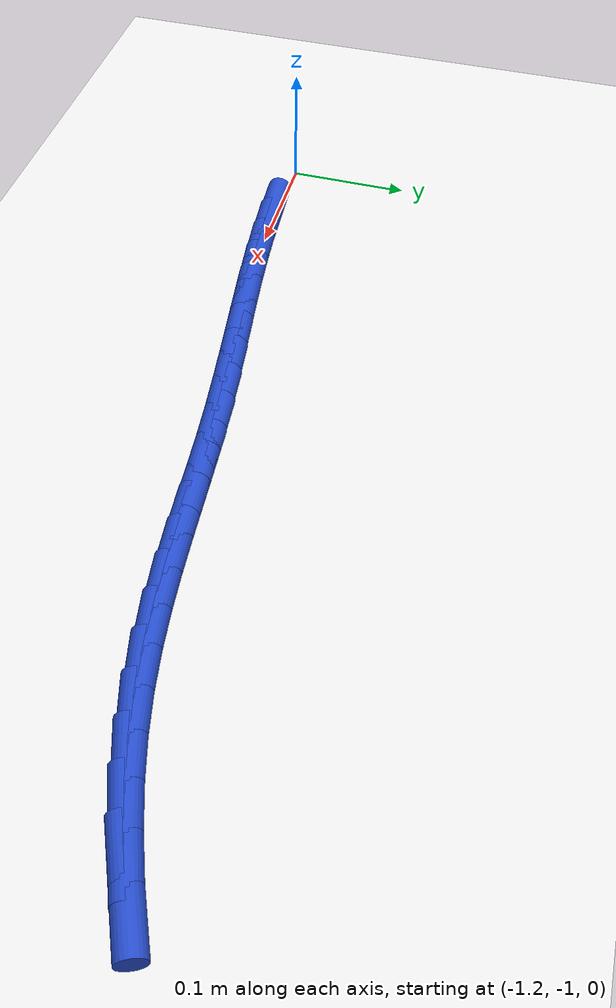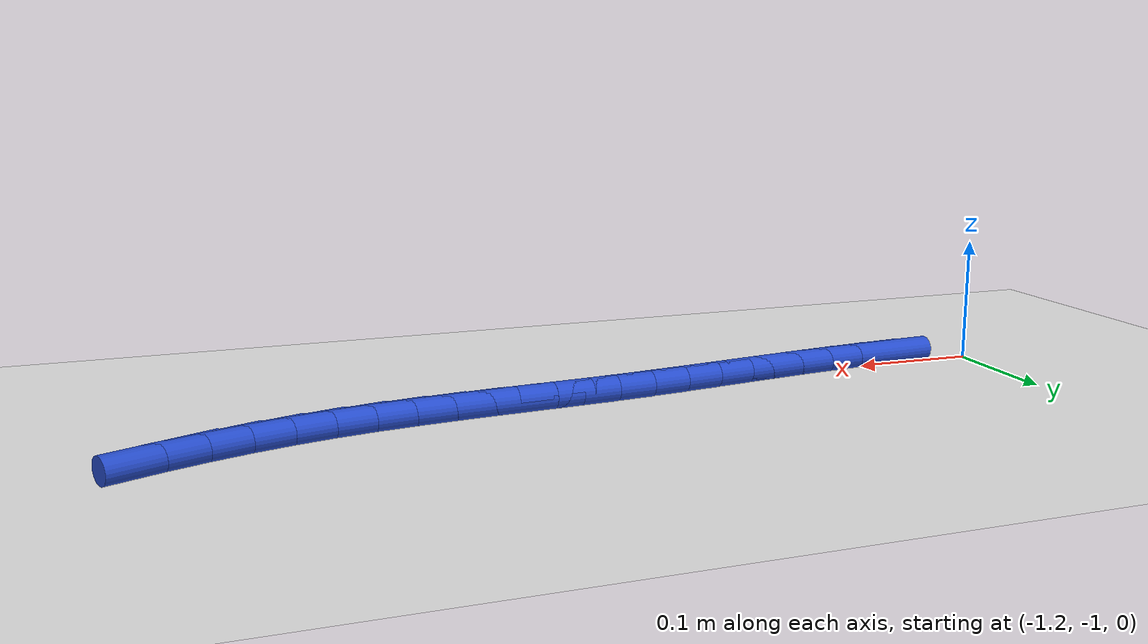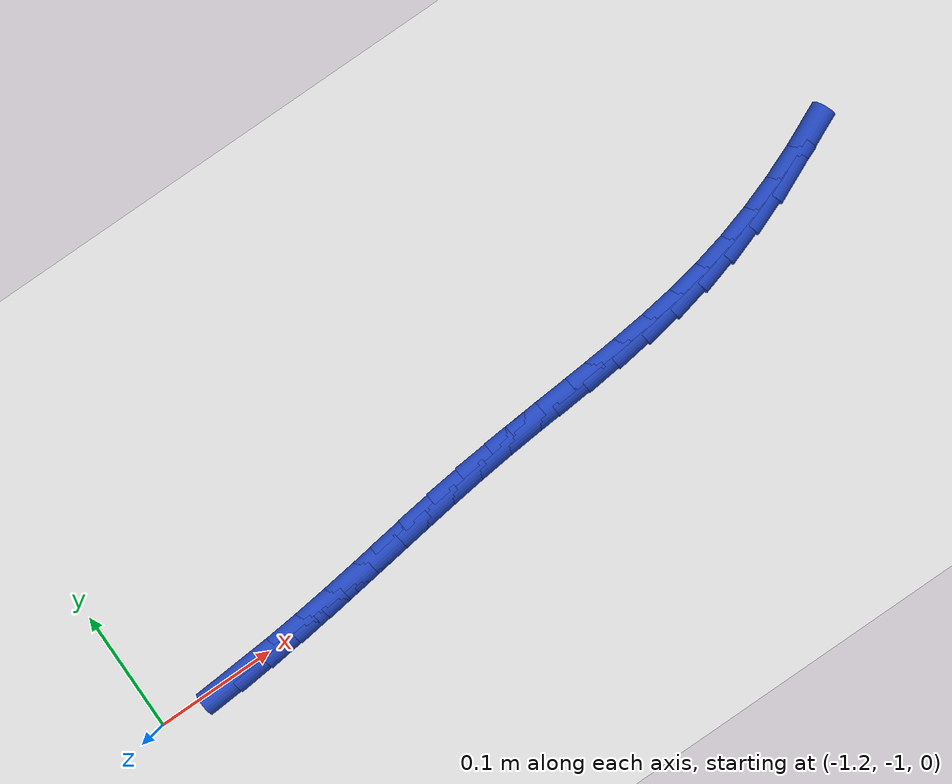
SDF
<sdf version="1.6">
 <world name="default">
  <model name="ground_plane">
   <static>1</static>
   <link name="link">
    <collision name="collision">
     <geometry><plane><normal>0 0 1</normal><size>100 100</size></plane></geometry>
     <surface><friction><ode><mu>100</mu><mu2>50</mu2></ode></friction></surface>
    </collision>
    <visual name="visual">
     <cast_shadows>0</cast_shadows>
     <geometry><plane><normal>0 0 1</normal><size>100 100</size></plane></geometry>
     <material>
      <script><uri>file://media/materials/scripts/gazebo.material</uri><name>Gazebo/WhiteGlow</name></script>
     </material>
    </visual>
   </link>
  </model>
  <model name="line">
   <link name="link_182">
    <pose>-1.1231019038314787 -1.0021123909794194 0.01 0 1.57 0.06957285690863124</pose>
    <collision name="collision">
     <geometry><cylinder><radius>0.01</radius><length>0.08</length></cylinder></geometry>
    </collision>
    <visual name="visual">
     <material>
      <script><name>Gazebo/Blue</name><uri>file://media/materials/scripts/gazebo.material</uri></script>
     </material>
     <geometry><cylinder><radius>0.01</radius><length>0.08</length></cylinder></geometry>
    </visual>
   </link>
   <link name="link_183">
    <pose>-1.094003309543412 -1.000084645899327 0.01 0 1.57 0.09581276047583592</pose>
    <collision name="collision">
     <geometry><cylinder><radius>0.01</radius><length>0.08</length></cylinder></geometry>
    </collision>
    <visual name="visual">
     <material>
      <script><name>Gazebo/Blue</name><uri>file://media/materials/scripts/gazebo.material</uri></script>
     </material>
     <geometry><cylinder><radius>0.01</radius><length>0.08</length></cylinder></geometry>
    </visual>
   </link>
   <link name="link_184">
    <pose>-1.0649103959605546 -0.9972886123558722 0.01 0 1.57 0.11572582746457519</pose>
    <collision name="collision">
     <geometry><cylinder><radius>0.01</radius><length>0.08</length></cylinder></geometry>
    </collision>
    <visual name="visual">
     <material>
      <script><name>Gazebo/Blue</name><uri>file://media/materials/scripts/gazebo.material</uri></script>
     </material>
     <geometry><cylinder><radius>0.01</radius><length>0.08</length></cylinder></geometry>
    </visual>
   </link>
   <link name="link_185">
    <pose>-1.035816447925988 -0.9939065797279697 0.01 0 1.57 0.12936021230298692</pose>
    <collision name="collision">
     <geometry><cylinder><radius>0.01</radius><length>0.08</length></cylinder></geometry>
    </collision>
    <visual name="visual">
     <material>
      <script><name>Gazebo/Blue</name><uri>file://media/materials/scripts/gazebo.material</uri></script>
     </material>
     <geometry><cylinder><radius>0.01</radius><length>0.08</length></cylinder></geometry>
    </visual>
   </link>
   <link name="link_186">
    <pose>-1.0067147502827962 -0.9901208373945348 0.01 0 1.57 0.13676755358259554</pose>
    <collision name="collision">
     <geometry><cylinder><radius>0.01</radius><length>0.08</length></cylinder></geometry>
    </collision>
    <visual name="visual">
     <material>
      <script><name>Gazebo/Blue</name><uri>file://media/materials/scripts/gazebo.material</uri></script>
     </material>
     <geometry><cylinder><radius>0.01</radius><length>0.08</length></cylinder></geometry>
    </visual>
   </link>
   <link name="link_187">
    <pose>-0.977598587874062 -0.9861136747344834 0.01 0 1.57 0.13798718505586927</pose>
    <collision name="collision">
     <geometry><cylinder><radius>0.01</radius><length>0.08</length></cylinder></geometry>
    </collision>
    <visual name="visual">
     <material>
      <script><name>Gazebo/Blue</name><uri>file://media/materials/scripts/gazebo.material</uri></script>
     </material>
     <geometry><cylinder><radius>0.01</radius><length>0.08</length></cylinder></geometry>
    </visual>
   </link>
   <link name="link_188">
    <pose>-0.9484612455428674 -0.9820673811267298 0.01 0 1.57 0.13303785654255026</pose>
    <collision name="collision">
     <geometry><cylinder><radius>0.01</radius><length>0.08</length></cylinder></geometry>
    </collision>
    <visual name="visual">
     <material>
      <script><name>Gazebo/Blue</name><uri>file://media/materials/scripts/gazebo.material</uri></script>
     </material>
     <geometry><cylinder><radius>0.01</radius><length>0.08</length></cylinder></geometry>
    </visual>
   </link>
   <link name="link_189">
    <pose>-0.9192960081322956 -0.9781642459501897 0.01 0 1.57 0.1219165251116564</pose>
    <collision name="collision">
     <geometry><cylinder><radius>0.01</radius><length>0.08</length></cylinder></geometry>
    </collision>
    <visual name="visual">
     <material>
      <script><name>Gazebo/Blue</name><uri>file://media/materials/scripts/gazebo.material</uri></script>
     </material>
     <geometry><cylinder><radius>0.01</radius><length>0.08</length></cylinder></geometry>
    </visual>
   </link>
   <link name="link_190">
    <pose>-0.8900961604854296 -0.9745865585837786 0.01 0 1.57 0.1046164685570877</pose>
    <collision name="collision">
     <geometry><cylinder><radius>0.01</radius><length>0.08</length></cylinder></geometry>
    </collision>
    <visual name="visual">
     <material>
      <script><name>Gazebo/Blue</name><uri>file://media/materials/scripts/gazebo.material</uri></script>
     </material>
     <geometry><cylinder><radius>0.01</radius><length>0.08</length></cylinder></geometry>
    </visual>
   </link>
   <link name="link_191">
    <pose>-0.8608550233442641 -0.9715162447736916 0.01 0 1.57 0.08542007414948186</pose>
    <collision name="collision">
     <geometry><cylinder><radius>0.01</radius><length>0.08</length></cylinder></geometry>
    </collision>
    <visual name="visual">
     <material>
      <script><name>Gazebo/Blue</name><uri>file://media/materials/scripts/gazebo.material</uri></script>
     </material>
     <geometry><cylinder><radius>0.01</radius><length>0.08</length></cylinder></geometry>
    </visual>
   </link>
   <link name="link_192">
    <pose>-0.8315783468391096 -0.9690093286153914 0.01 0 1.57 0.0749146695259253</pose>
    <collision name="collision">
     <geometry><cylinder><radius>0.01</radius><length>0.08</length></cylinder></geometry>
    </collision>
    <visual name="visual">
     <material>
      <script><name>Gazebo/Blue</name><uri>file://media/materials/scripts/gazebo.material</uri></script>
     </material>
     <geometry><cylinder><radius>0.01</radius><length>0.08</length></cylinder></geometry>
    </visual>
   </link>
   <link name="link_193">
    <pose>-0.8023024665316238 -0.9668120236009108 0.01 0 1.57 0.07471427790729598</pose>
    <collision name="collision">
     <geometry><cylinder><radius>0.01</radius><length>0.08</length></cylinder></geometry>
    </collision>
    <visual name="visual">
     <material>
      <script><name>Gazebo/Blue</name><uri>file://media/materials/scripts/gazebo.material</uri></script>
     </material>
     <geometry><cylinder><radius>0.01</radius><length>0.08</length></cylinder></geometry>
    </visual>
   </link>
   <link name="link_194">
    <pose>-0.7730683381949741 -0.964623743473072 0.01 0 1.57 0.08486329304700162</pose>
    <collision name="collision">
     <geometry><cylinder><radius>0.01</radius><length>0.08</length></cylinder></geometry>
    </collision>
    <visual name="visual">
     <material>
      <script><name>Gazebo/Blue</name><uri>file://media/materials/scripts/gazebo.material</uri></script>
     </material>
     <geometry><cylinder><radius>0.01</radius><length>0.08</length></cylinder></geometry>
    </visual>
   </link>
   <link name="link_195">
    <pose>-0.7439169176023284 -0.9621439019746968 0.01 0 1.57 0.10543690869283065</pose>
    <collision name="collision">
     <geometry><cylinder><radius>0.01</radius><length>0.08</length></cylinder></geometry>
    </collision>
    <visual name="visual">
     <material>
      <script><name>Gazebo/Blue</name><uri>file://media/materials/scripts/gazebo.material</uri></script>
     </material>
     <geometry><cylinder><radius>0.01</radius><length>0.08</length></cylinder></geometry>
    </visual>
   </link>
   <link name="link_196">
    <pose>-0.7148891605268545 -0.9590719128486077 0.01 0 1.57 0.13650855980496274</pose>
    <collision name="collision">
     <geometry><cylinder><radius>0.01</radius><length>0.08</length></cylinder></geometry>
    </collision>
    <visual name="visual">
     <material>
      <script><name>Gazebo/Blue</name><uri>file://media/materials/scripts/gazebo.material</uri></script>
     </material>
     <geometry><cylinder><radius>0.01</radius><length>0.08</length></cylinder></geometry>
    </visual>
   </link>
   <link name="link_197">
    <pose>-0.6860260227417203 -0.955107189837627 0.01 0 1.57 0.17808218528285377</pose>
    <collision name="collision">
     <geometry><cylinder><radius>0.01</radius><length>0.08</length></cylinder></geometry>
    </collision>
    <visual name="visual">
     <material>
      <script><name>Gazebo/Blue</name><uri>file://media/materials/scripts/gazebo.material</uri></script>
     </material>
     <geometry><cylinder><radius>0.01</radius><length>0.08</length></cylinder></geometry>
    </visual>
   </link>
   <link name="link_198">
    <pose>-0.657368460020094 -0.9499491466845768 0.01 0 1.57 0.22919344031735958</pose>
    <collision name="collision">
     <geometry><cylinder><radius>0.01</radius><length>0.08</length></cylinder></geometry>
    </collision>
    <visual name="visual">
     <material>
      <script><name>Gazebo/Blue</name><uri>file://media/materials/scripts/gazebo.material</uri></script>
     </material>
     <geometry><cylinder><radius>0.01</radius><length>0.08</length></cylinder></geometry>
    </visual>
   </link>
   <link name="link_199">
    <pose>-0.6289594178698803 -0.9433215232582365 0.01 0 1.57 0.2821789874514126</pose>
    <collision name="collision">
     <geometry><cylinder><radius>0.01</radius><length>0.08</length></cylinder></geometry>
    </collision>
    <visual name="visual">
     <material>
      <script><name>Gazebo/Blue</name><uri>file://media/materials/scripts/gazebo.material</uri></script>
     </material>
     <geometry><cylinder><radius>0.01</radius><length>0.08</length></cylinder></geometry>
    </visual>
   </link>
   <link name="link_200">
    <pose>-0.6008604208423688 -0.935175203348195 0.01 0 1.57 0.3331107468057248</pose>
    <collision name="collision">
     <geometry><cylinder><radius>0.01</radius><length>0.08</length></cylinder></geometry>
    </collision>
    <visual name="visual">
     <material>
      <script><name>Gazebo/Blue</name><uri>file://media/materials/scripts/gazebo.material</uri></script>
     </material>
     <geometry><cylinder><radius>0.01</radius><length>0.08</length></cylinder></geometry>
    </visual>
   </link>
   <link name="link_201">
    <pose>-0.573143121902643 -0.9255848988428664 0.01 0 1.57 0.3821745043053326</pose>
    <collision name="collision">
     <geometry><cylinder><radius>0.01</radius><length>0.08</length></cylinder></geometry>
    </collision>
    <visual name="visual">
     <material>
      <script><name>Gazebo/Blue</name><uri>file://media/materials/scripts/gazebo.material</uri></script>
     </material>
     <geometry><cylinder><radius>0.01</radius><length>0.08</length></cylinder></geometry>
    </visual>
   </link>
   <link name="link_202">
    <pose>-0.5458792760375669 -0.9146265689299499 0.01 0 1.57 0.429613520077354</pose>
    <collision name="collision">
     <geometry><cylinder><radius>0.01</radius><length>0.08</length></cylinder></geometry>
    </collision>
    <visual name="visual">
     <material>
      <script><name>Gazebo/Blue</name><uri>file://media/materials/scripts/gazebo.material</uri></script>
     </material>
     <geometry><cylinder><radius>0.01</radius><length>0.08</length></cylinder></geometry>
    </visual>
   </link>
  </model>
 </world>
</sdf>
